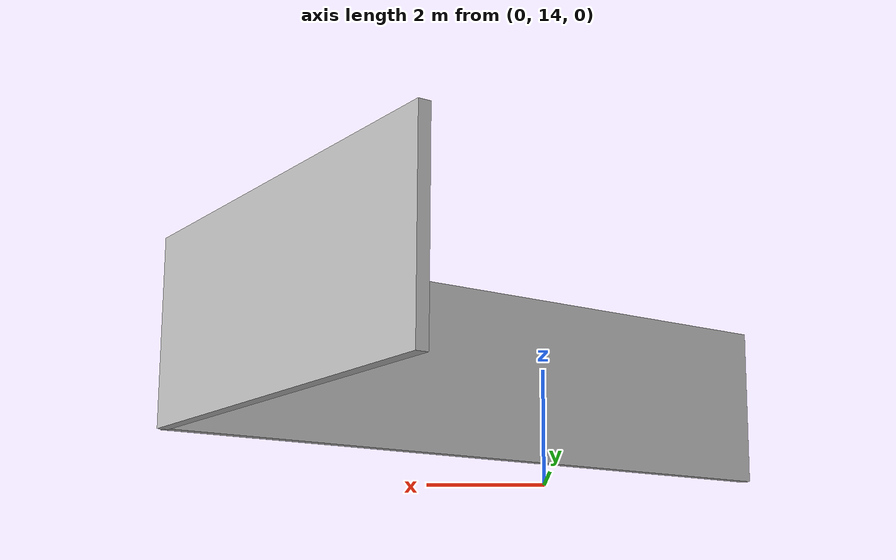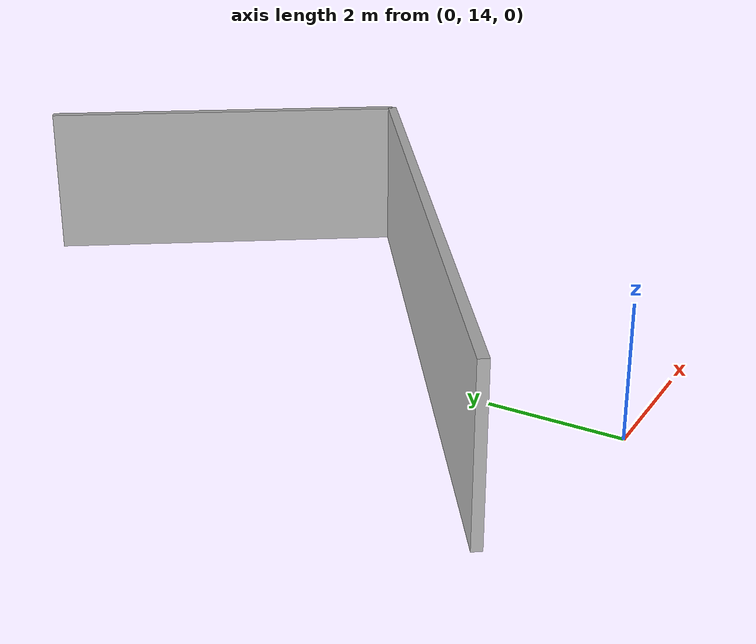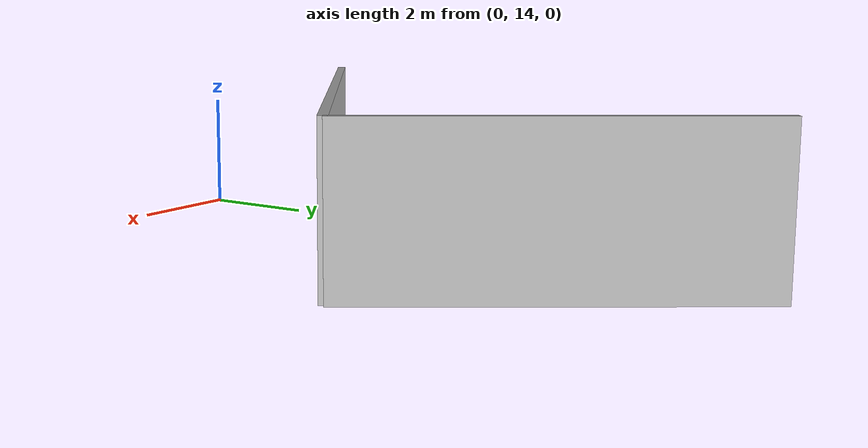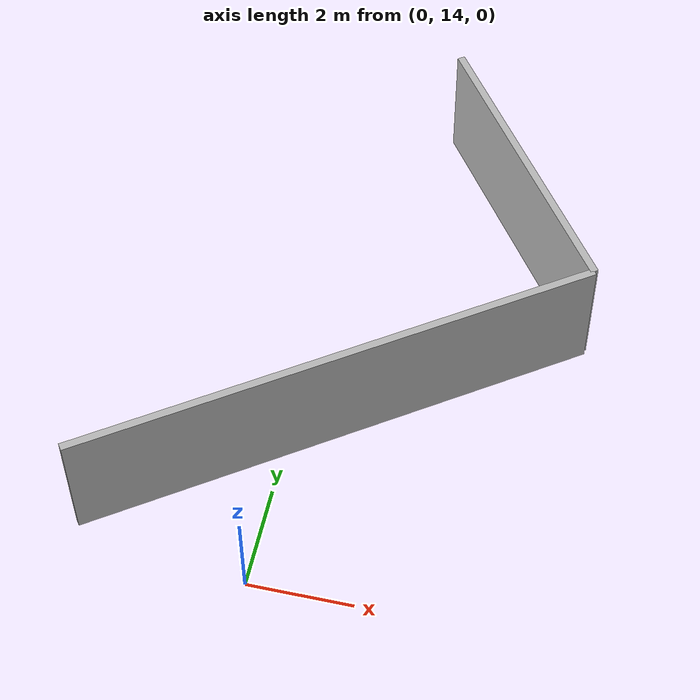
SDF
<?xml version="1.0" ?>
<sdf version="1.6">
  <model name="sps_2104">
    <pose frame="">0 0 0 0 -0 0</pose>
    <static>1</static>
    <self_collide>0</self_collide>
    <allow_auto_disable>0</allow_auto_disable>
    <link name="Wall1295">
      <kinematic>0</kinematic>
      <gravity>1</gravity>
      <self_collide>0</self_collide>
      <collision name="collision">
        <geometry>
          <box>
            <size>6.10059 0.15 2.5</size>
          </box>
        </geometry>
        <pose frame="">0 0 0 0 -0 0</pose>
      </collision>
      <visual name="visual">
        <geometry>
          <box>
            <size>6.10059 0.15 2.5</size>
          </box>
        </geometry>
        <pose frame="">0 0 0 0 -0 0</pose>
        <cast_shadows>1</cast_shadows>
        <transparency>0.0</transparency>
      </visual>
      <pose frame="">3.40694 22.9755 1.25 0 0 -0.964834</pose>
    </link>
    <link name="Wall1296">
      <kinematic>0</kinematic>
      <gravity>1</gravity>
      <self_collide>0</self_collide>
      <collision name="collision">
        <geometry>
          <box>
            <size>10.3305 0.15 2.5</size>
          </box>
        </geometry>
        <pose frame="">0 0 0 0 -0 0</pose>
      </collision>
      <visual name="visual">
        <geometry>
          <box>
            <size>10.3305 0.15 2.5</size>
          </box>
        </geometry>
        <pose frame="">0 0 0 0 -0 0</pose>
        <cast_shadows>1</cast_shadows>
        <transparency>0.0</transparency>
      </visual>
      <pose frame="">0.898643 17.5264 1.25 0 0 -2.53563</pose>
    </link>
  </model>
</sdf>
